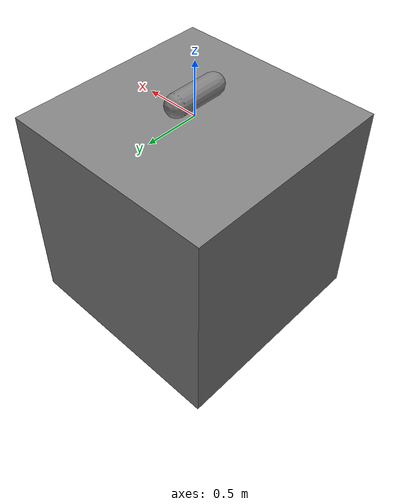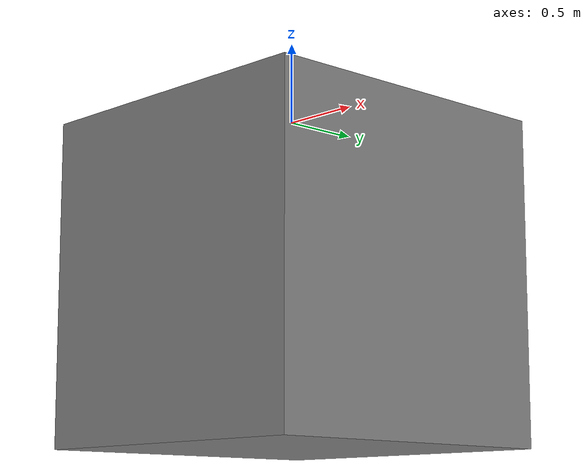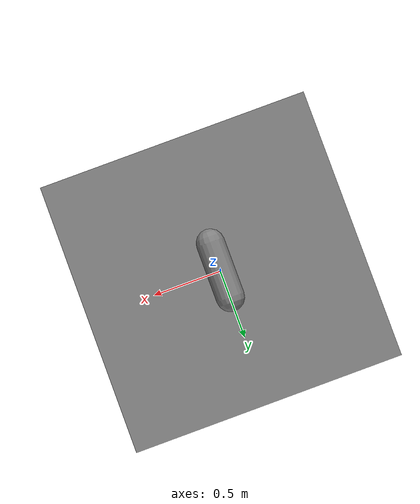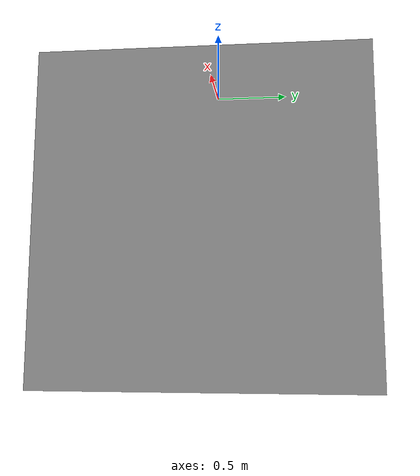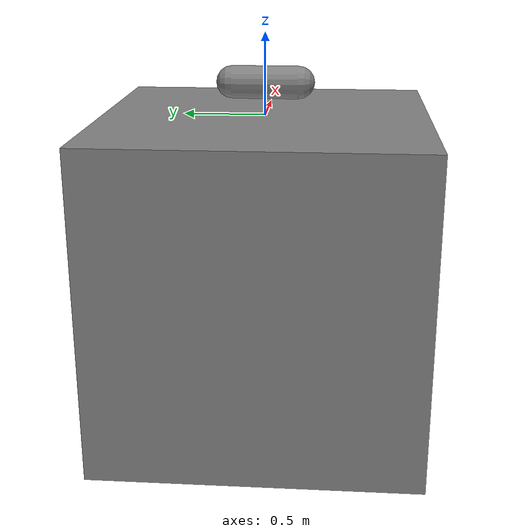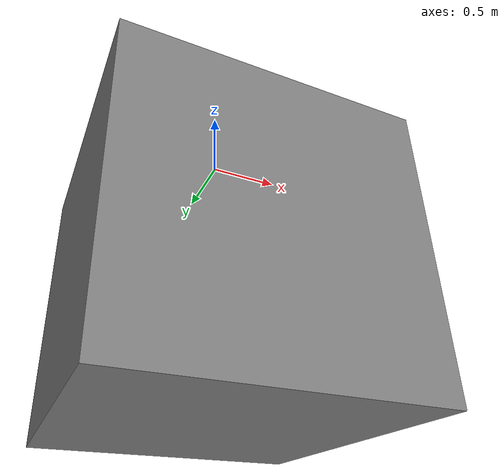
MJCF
<mujoco model="mesh-capsule">
  <option gravity="0 0 -9.81" timestep="0.001" integrator="RK4"/>

  <asset>
    <mesh name="ground"
          vertex="-1 -1 -1  1 -1 -1  1 1 -1  -1 1 -1
                  -1 -1  1  1 -1  1  1 1  1  -1 1  1"
          face="0 2 1  0 3 2  4 5 6  4 6 7
                0 5 4  0 1 5  2 7 6  2 3 7
                0 7 3  0 4 7  1 6 5  1 2 6"/>
  </asset>

  <worldbody>
    <geom name="ground" type="mesh" mesh="ground" pos="0 0 -1"/>
    <body name="capsule" pos="0 0 0.2" quat="0.707 0.707 0 0">
      <joint type="free"/>
      <geom name="capsule" type="capsule" size="0.1 0.2" density="1000"/>
    </body>
  </worldbody>
</mujoco>
